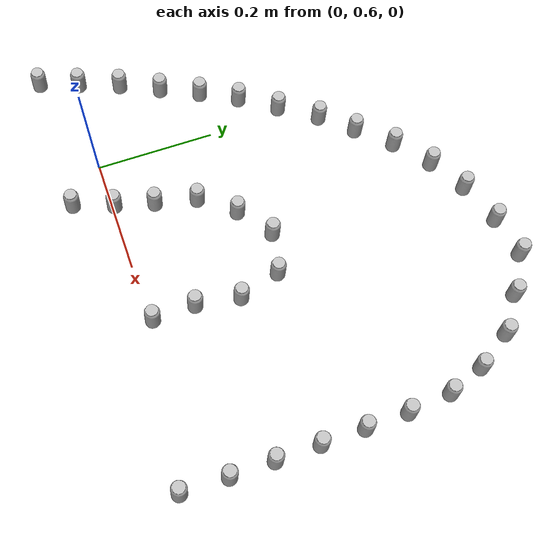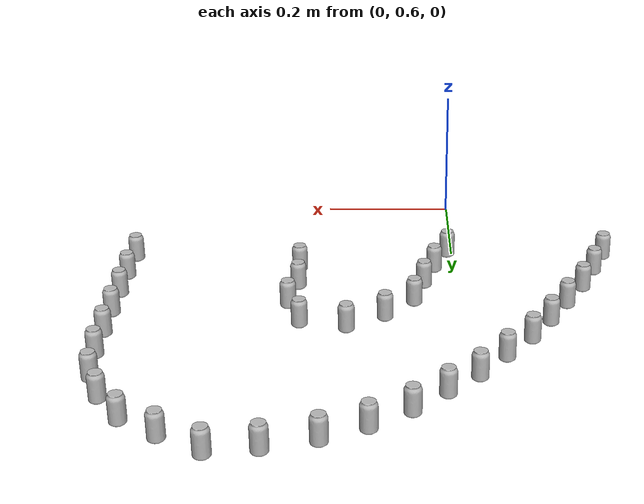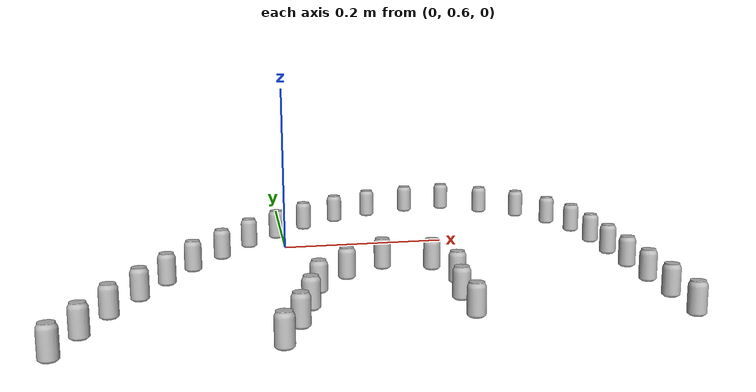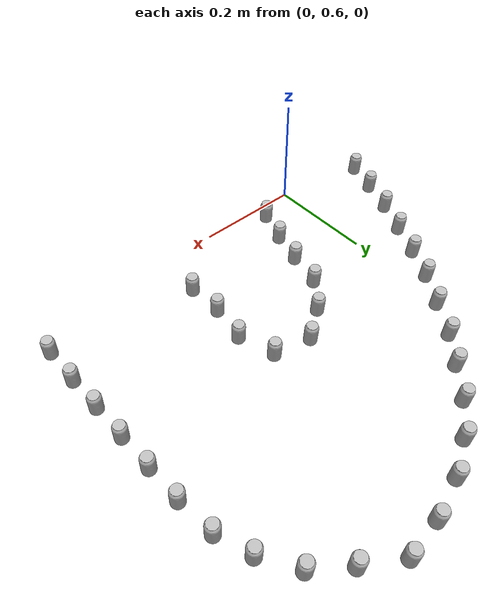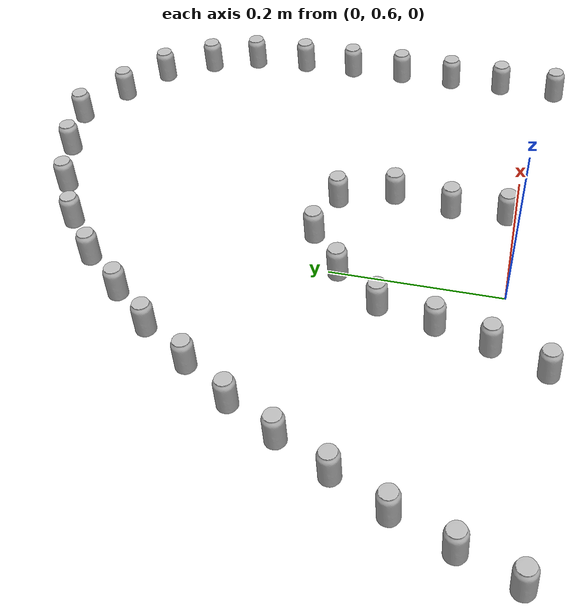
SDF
<sdf version="1.4">
 <world name="default">
  <model name="ground_plane">
   <static>1</static>
   <link name="link">
    <collision name="collision">
     <geometry><plane><normal>0 0 1</normal><size>100 100</size></plane></geometry>
     <surface><friction><ode><mu>100</mu><mu2>50</mu2></ode></friction></surface>
    </collision>
    <visual name="visual">
     <cast_shadows>0</cast_shadows>
     <geometry><plane><normal>0 0 1</normal><size>100 100</size></plane></geometry>
     <material>
      <script><uri>file://media/materials/scripts/gazebo.material</uri><name>Gazebo/Grey</name></script>
     </material>
    </visual>
    <velocity_decay><linear>0</linear><angular>0</angular></velocity_decay>
   </link>
  </model>
  <model name="coke_can_11">
   <static>1</static>
   <link name="link">
    <inertial>
     <mass>0.39</mass>
     <inertia><ixx>0.00058</ixx><ixy>0</ixy><ixz>0</ixz><iyy>0.00058</iyy><iyz>0</iyz><izz>0.00019</izz></inertia>
    </inertial>
    <collision name="collision">
     <pose>0 0 -0.183 0 -0 0</pose>
     <geometry>
      <mesh><uri>model://coke_can/meshes/coke_can.dae</uri><scale>0.398 0.398 0.398</scale></mesh>
     </geometry>
     <surface>
      <friction><ode><mu>1</mu><mu2>1</mu2></ode></friction>
      <contact><ode><kp>1e+07</kp><kd>1</kd><min_depth>0.001</min_depth><max_vel>0.1</max_vel></ode></contact>
     </surface>
    </collision>
    <visual name="visual">
     <pose>0 0 -0.183 0 -0 0</pose>
     <geometry>
      <mesh><uri>model://coke_can/meshes/coke_can.dae</uri><scale>0.398 0.398 0.398</scale></mesh>
     </geometry>
    </visual>
    <velocity_decay><linear>0</linear><angular>0</angular></velocity_decay>
   </link>
   <pose>0.551856 0.569792 -0.001657 -0.05647 0.004812 0.001626</pose>
   <static>0</static>
  </model>
  <model name="coke_can_12">
   <static>1</static>
   <link name="link">
    <inertial>
     <mass>0.39</mass>
     <inertia><ixx>0.00058</ixx><ixy>0</ixy><ixz>0</ixz><iyy>0.00058</iyy><iyz>0</iyz><izz>0.00019</izz></inertia>
    </inertial>
    <collision name="collision">
     <pose>0 0 -0.183 0 -0 0</pose>
     <geometry>
      <mesh><uri>model://coke_can/meshes/coke_can.dae</uri><scale>0.398 0.398 0.398</scale></mesh>
     </geometry>
     <surface>
      <friction><ode><mu>1</mu><mu2>1</mu2></ode></friction>
      <contact><ode><kp>1e+07</kp><kd>1</kd><min_depth>0.001</min_depth><max_vel>0.1</max_vel></ode></contact>
     </surface>
    </collision>
    <visual name="visual">
     <pose>0 0 -0.183 0 -0 0</pose>
     <geometry>
      <mesh><uri>model://coke_can/meshes/coke_can.dae</uri><scale>0.398 0.398 0.398</scale></mesh>
     </geometry>
    </visual>
    <velocity_decay><linear>0</linear><angular>0</angular></velocity_decay>
   </link>
   <pose>0.553953 0.651431 -0.001657 -0.05647 0.004812 0.001626</pose>
   <static>0</static>
  </model>
  <model name="coke_can_13">
   <static>1</static>
   <link name="link">
    <inertial>
     <mass>0.39</mass>
     <inertia><ixx>0.00058</ixx><ixy>0</ixy><ixz>0</ixz><iyy>0.00058</iyy><iyz>0</iyz><izz>0.00019</izz></inertia>
    </inertial>
    <collision name="collision">
     <pose>0 0 -0.183 0 -0 0</pose>
     <geometry>
      <mesh><uri>model://coke_can/meshes/coke_can.dae</uri><scale>0.398 0.398 0.398</scale></mesh>
     </geometry>
     <surface>
      <friction><ode><mu>1</mu><mu2>1</mu2></ode></friction>
      <contact><ode><kp>1e+07</kp><kd>1</kd><min_depth>0.001</min_depth><max_vel>0.1</max_vel></ode></contact>
     </surface>
    </collision>
    <visual name="visual">
     <pose>0 0 -0.183 0 -0 0</pose>
     <geometry>
      <mesh><uri>model://coke_can/meshes/coke_can.dae</uri><scale>0.398 0.398 0.398</scale></mesh>
     </geometry>
    </visual>
    <velocity_decay><linear>0</linear><angular>0</angular></velocity_decay>
   </link>
   <pose>0.55358 0.727718 -0.001657 -0.05647 0.004812 0.001626</pose>
   <static>0</static>
  </model>
  <model name="coke_can_14">
   <static>1</static>
   <link name="link">
    <inertial>
     <mass>0.39</mass>
     <inertia><ixx>0.00058</ixx><ixy>0</ixy><ixz>0</ixz><iyy>0.00058</iyy><iyz>0</iyz><izz>0.00019</izz></inertia>
    </inertial>
    <collision name="collision">
     <pose>0 0 -0.183 0 -0 0</pose>
     <geometry>
      <mesh><uri>model://coke_can/meshes/coke_can.dae</uri><scale>0.398 0.398 0.398</scale></mesh>
     </geometry>
     <surface>
      <friction><ode><mu>1</mu><mu2>1</mu2></ode></friction>
      <contact><ode><kp>1e+07</kp><kd>1</kd><min_depth>0.001</min_depth><max_vel>0.1</max_vel></ode></contact>
     </surface>
    </collision>
    <visual name="visual">
     <pose>0 0 -0.183 0 -0 0</pose>
     <geometry>
      <mesh><uri>model://coke_can/meshes/coke_can.dae</uri><scale>0.398 0.398 0.398</scale></mesh>
     </geometry>
    </visual>
    <velocity_decay><linear>0</linear><angular>0</angular></velocity_decay>
   </link>
   <pose>0.553579 0.804939 -0.001657 -0.05647 0.004812 0.001626</pose>
   <static>0</static>
  </model>
  <model name="coke_can_15">
   <static>1</static>
   <link name="link">
    <inertial>
     <mass>0.39</mass>
     <inertia><ixx>0.00058</ixx><ixy>0</ixy><ixz>0</ixz><iyy>0.00058</iyy><iyz>0</iyz><izz>0.00019</izz></inertia>
    </inertial>
    <collision name="collision">
     <pose>0 0 -0.183 0 -0 0</pose>
     <geometry>
      <mesh><uri>model://coke_can/meshes/coke_can.dae</uri><scale>0.398 0.398 0.398</scale></mesh>
     </geometry>
     <surface>
      <friction><ode><mu>1</mu><mu2>1</mu2></ode></friction>
      <contact><ode><kp>1e+07</kp><kd>1</kd><min_depth>0.001</min_depth><max_vel>0.1</max_vel></ode></contact>
     </surface>
    </collision>
    <visual name="visual">
     <pose>0 0 -0.183 0 -0 0</pose>
     <geometry>
      <mesh><uri>model://coke_can/meshes/coke_can.dae</uri><scale>0.398 0.398 0.398</scale></mesh>
     </geometry>
    </visual>
    <velocity_decay><linear>0</linear><angular>0</angular></velocity_decay>
   </link>
   <pose>0.552971 0.881645 -0.001657 -0.05647 0.004812 0.001626</pose>
   <static>0</static>
  </model>
  <model name="coke_can_16">
   <static>1</static>
   <link name="link">
    <inertial>
     <mass>0.39</mass>
     <inertia><ixx>0.00058</ixx><ixy>0</ixy><ixz>0</ixz><iyy>0.00058</iyy><iyz>0</iyz><izz>0.00019</izz></inertia>
    </inertial>
    <collision name="collision">
     <pose>0 0 -0.183 0 -0 0</pose>
     <geometry>
      <mesh><uri>model://coke_can/meshes/coke_can.dae</uri><scale>0.398 0.398 0.398</scale></mesh>
     </geometry>
     <surface>
      <friction><ode><mu>1</mu><mu2>1</mu2></ode></friction>
      <contact><ode><kp>1e+07</kp><kd>1</kd><min_depth>0.001</min_depth><max_vel>0.1</max_vel></ode></contact>
     </surface>
    </collision>
    <visual name="visual">
     <pose>0 0 -0.183 0 -0 0</pose>
     <geometry>
      <mesh><uri>model://coke_can/meshes/coke_can.dae</uri><scale>0.398 0.398 0.398</scale></mesh>
     </geometry>
    </visual>
    <velocity_decay><linear>0</linear><angular>0</angular></velocity_decay>
   </link>
   <pose>0.551859 0.957143 -0.001657 -0.05647 0.004812 0.001626</pose>
   <static>0</static>
  </model>
  <model name="coke_can_17">
   <static>1</static>
   <link name="link">
    <inertial>
     <mass>0.39</mass>
     <inertia><ixx>0.00058</ixx><ixy>0</ixy><ixz>0</ixz><iyy>0.00058</iyy><iyz>0</iyz><izz>0.00019</izz></inertia>
    </inertial>
    <collision name="collision">
     <pose>0 0 -0.183 0 -0 0</pose>
     <geometry>
      <mesh><uri>model://coke_can/meshes/coke_can.dae</uri><scale>0.398 0.398 0.398</scale></mesh>
     </geometry>
     <surface>
      <friction><ode><mu>1</mu><mu2>1</mu2></ode></friction>
      <contact><ode><kp>1e+07</kp><kd>1</kd><min_depth>0.001</min_depth><max_vel>0.1</max_vel></ode></contact>
     </surface>
    </collision>
    <visual name="visual">
     <pose>0 0 -0.183 0 -0 0</pose>
     <geometry>
      <mesh><uri>model://coke_can/meshes/coke_can.dae</uri><scale>0.398 0.398 0.398</scale></mesh>
     </geometry>
    </visual>
    <velocity_decay><linear>0</linear><angular>0</angular></velocity_decay>
   </link>
   <pose>0.544914 1.03438 -0.001657 -0.05647 0.004812 0.001626</pose>
   <static>0</static>
  </model>
  <model name="coke_can_18">
   <static>1</static>
   <link name="link">
    <inertial>
     <mass>0.39</mass>
     <inertia><ixx>0.00058</ixx><ixy>0</ixy><ixz>0</ixz><iyy>0.00058</iyy><iyz>0</iyz><izz>0.00019</izz></inertia>
    </inertial>
    <collision name="collision">
     <pose>0 0 -0.183 0 -0 0</pose>
     <geometry>
      <mesh><uri>model://coke_can/meshes/coke_can.dae</uri><scale>0.398 0.398 0.398</scale></mesh>
     </geometry>
     <surface>
      <friction><ode><mu>1</mu><mu2>1</mu2></ode></friction>
      <contact><ode><kp>1e+07</kp><kd>1</kd><min_depth>0.001</min_depth><max_vel>0.1</max_vel></ode></contact>
     </surface>
    </collision>
    <visual name="visual">
     <pose>0 0 -0.183 0 -0 0</pose>
     <geometry>
      <mesh><uri>model://coke_can/meshes/coke_can.dae</uri><scale>0.398 0.398 0.398</scale></mesh>
     </geometry>
    </visual>
    <velocity_decay><linear>0</linear><angular>0</angular></velocity_decay>
   </link>
   <pose>0.52107 1.09986 -0.001657 -0.05647 0.004812 0.001626</pose>
   <static>0</static>
  </model>
  <model name="coke_can_19">
   <static>1</static>
   <link name="link">
    <inertial>
     <mass>0.39</mass>
     <inertia><ixx>0.00058</ixx><ixy>0</ixy><ixz>0</ixz><iyy>0.00058</iyy><iyz>0</iyz><izz>0.00019</izz></inertia>
    </inertial>
    <collision name="collision">
     <pose>0 0 -0.183 0 -0 0</pose>
     <geometry>
      <mesh><uri>model://coke_can/meshes/coke_can.dae</uri><scale>0.398 0.398 0.398</scale></mesh>
     </geometry>
     <surface>
      <friction><ode><mu>1</mu><mu2>1</mu2></ode></friction>
      <contact><ode><kp>1e+07</kp><kd>1</kd><min_depth>0.001</min_depth><max_vel>0.1</max_vel></ode></contact>
     </surface>
    </collision>
    <visual name="visual">
     <pose>0 0 -0.183 0 -0 0</pose>
     <geometry>
      <mesh><uri>model://coke_can/meshes/coke_can.dae</uri><scale>0.398 0.398 0.398</scale></mesh>
     </geometry>
    </visual>
    <velocity_decay><linear>0</linear><angular>0</angular></velocity_decay>
   </link>
   <pose>0.480327 1.16398 -0.001657 -0.05647 0.004812 0.001626</pose>
   <static>0</static>
  </model>
  <model name="coke_can_20">
   <static>1</static>
   <link name="link">
    <inertial>
     <mass>0.39</mass>
     <inertia><ixx>0.00058</ixx><ixy>0</ixy><ixz>0</ixz><iyy>0.00058</iyy><iyz>0</iyz><izz>0.00019</izz></inertia>
    </inertial>
    <collision name="collision">
     <pose>0 0 -0.183 0 -0 0</pose>
     <geometry>
      <mesh><uri>model://coke_can/meshes/coke_can.dae</uri><scale>0.398 0.398 0.398</scale></mesh>
     </geometry>
     <surface>
      <friction><ode><mu>1</mu><mu2>1</mu2></ode></friction>
      <contact><ode><kp>1e+07</kp><kd>1</kd><min_depth>0.001</min_depth><max_vel>0.1</max_vel></ode></contact>
     </surface>
    </collision>
    <visual name="visual">
     <pose>0 0 -0.183 0 -0 0</pose>
     <geometry>
      <mesh><uri>model://coke_can/meshes/coke_can.dae</uri><scale>0.398 0.398 0.398</scale></mesh>
     </geometry>
    </visual>
    <velocity_decay><linear>0</linear><angular>0</angular></velocity_decay>
   </link>
   <pose>0.419583 1.20952 -0.001657 -0.05647 0.004812 0.001626</pose>
   <static>0</static>
  </model>
  <model name="coke_can_21">
   <static>1</static>
   <link name="link">
    <inertial>
     <mass>0.39</mass>
     <inertia><ixx>0.00058</ixx><ixy>0</ixy><ixz>0</ixz><iyy>0.00058</iyy><iyz>0</iyz><izz>0.00019</izz></inertia>
    </inertial>
    <collision name="collision">
     <pose>0 0 -0.183 0 -0 0</pose>
     <geometry>
      <mesh><uri>model://coke_can/meshes/coke_can.dae</uri><scale>0.398 0.398 0.398</scale></mesh>
     </geometry>
     <surface>
      <friction><ode><mu>1</mu><mu2>1</mu2></ode></friction>
      <contact><ode><kp>1e+07</kp><kd>1</kd><min_depth>0.001</min_depth><max_vel>0.1</max_vel></ode></contact>
     </surface>
    </collision>
    <visual name="visual">
     <pose>0 0 -0.183 0 -0 0</pose>
     <geometry>
      <mesh><uri>model://coke_can/meshes/coke_can.dae</uri><scale>0.398 0.398 0.398</scale></mesh>
     </geometry>
    </visual>
    <velocity_decay><linear>0</linear><angular>0</angular></velocity_decay>
   </link>
   <pose>0.352083 1.25266 -0.001657 -0.05647 0.004812 0.001626</pose>
   <static>0</static>
  </model>
  <model name="coke_can_22">
   <static>1</static>
   <link name="link">
    <inertial>
     <mass>0.39</mass>
     <inertia><ixx>0.00058</ixx><ixy>0</ixy><ixz>0</ixz><iyy>0.00058</iyy><iyz>0</iyz><izz>0.00019</izz></inertia>
    </inertial>
    <collision name="collision">
     <pose>0 0 -0.183 0 -0 0</pose>
     <geometry>
      <mesh><uri>model://coke_can/meshes/coke_can.dae</uri><scale>0.398 0.398 0.398</scale></mesh>
     </geometry>
     <surface>
      <friction><ode><mu>1</mu><mu2>1</mu2></ode></friction>
      <contact><ode><kp>1e+07</kp><kd>1</kd><min_depth>0.001</min_depth><max_vel>0.1</max_vel></ode></contact>
     </surface>
    </collision>
    <visual name="visual">
     <pose>0 0 -0.183 0 -0 0</pose>
     <geometry>
      <mesh><uri>model://coke_can/meshes/coke_can.dae</uri><scale>0.398 0.398 0.398</scale></mesh>
     </geometry>
    </visual>
    <velocity_decay><linear>0</linear><angular>0</angular></velocity_decay>
   </link>
   <pose>0.275952 1.24191 -0.001657 -0.05647 0.004812 0.001626</pose>
   <static>0</static>
  </model>
  <model name="coke_can_23">
   <static>1</static>
   <link name="link">
    <inertial>
     <mass>0.39</mass>
     <inertia><ixx>0.00058</ixx><ixy>0</ixy><ixz>0</ixz><iyy>0.00058</iyy><iyz>0</iyz><izz>0.00019</izz></inertia>
    </inertial>
    <collision name="collision">
     <pose>0 0 -0.183 0 -0 0</pose>
     <geometry>
      <mesh><uri>model://coke_can/meshes/coke_can.dae</uri><scale>0.398 0.398 0.398</scale></mesh>
     </geometry>
     <surface>
      <friction><ode><mu>1</mu><mu2>1</mu2></ode></friction>
      <contact><ode><kp>1e+07</kp><kd>1</kd><min_depth>0.001</min_depth><max_vel>0.1</max_vel></ode></contact>
     </surface>
    </collision>
    <visual name="visual">
     <pose>0 0 -0.183 0 -0 0</pose>
     <geometry>
      <mesh><uri>model://coke_can/meshes/coke_can.dae</uri><scale>0.398 0.398 0.398</scale></mesh>
     </geometry>
    </visual>
    <velocity_decay><linear>0</linear><angular>0</angular></velocity_decay>
   </link>
   <pose>0.197094 1.21748 -0.001657 -0.05647 0.004812 0.001626</pose>
   <static>0</static>
  </model>
  <model name="coke_can_24">
   <static>1</static>
   <link name="link">
    <inertial>
     <mass>0.39</mass>
     <inertia><ixx>0.00058</ixx><ixy>0</ixy><ixz>0</ixz><iyy>0.00058</iyy><iyz>0</iyz><izz>0.00019</izz></inertia>
    </inertial>
    <collision name="collision">
     <pose>0 0 -0.183 0 -0 0</pose>
     <geometry>
      <mesh><uri>model://coke_can/meshes/coke_can.dae</uri><scale>0.398 0.398 0.398</scale></mesh>
     </geometry>
     <surface>
      <friction><ode><mu>1</mu><mu2>1</mu2></ode></friction>
      <contact><ode><kp>1e+07</kp><kd>1</kd><min_depth>0.001</min_depth><max_vel>0.1</max_vel></ode></contact>
     </surface>
    </collision>
    <visual name="visual">
     <pose>0 0 -0.183 0 -0 0</pose>
     <geometry>
      <mesh><uri>model://coke_can/meshes/coke_can.dae</uri><scale>0.398 0.398 0.398</scale></mesh>
     </geometry>
    </visual>
    <velocity_decay><linear>0</linear><angular>0</angular></velocity_decay>
   </link>
   <pose>0.129825 1.18197 -0.001657 -0.05647 0.004812 0.001626</pose>
   <static>0</static>
  </model>
  <model name="coke_can_25">
   <static>1</static>
   <link name="link">
    <inertial>
     <mass>0.39</mass>
     <inertia><ixx>0.00058</ixx><ixy>0</ixy><ixz>0</ixz><iyy>0.00058</iyy><iyz>0</iyz><izz>0.00019</izz></inertia>
    </inertial>
    <collision name="collision">
     <pose>0 0 -0.183 0 -0 0</pose>
     <geometry>
      <mesh><uri>model://coke_can/meshes/coke_can.dae</uri><scale>0.398 0.398 0.398</scale></mesh>
     </geometry>
     <surface>
      <friction><ode><mu>1</mu><mu2>1</mu2></ode></friction>
      <contact><ode><kp>1e+07</kp><kd>1</kd><min_depth>0.001</min_depth><max_vel>0.1</max_vel></ode></contact>
     </surface>
    </collision>
    <visual name="visual">
     <pose>0 0 -0.183 0 -0 0</pose>
     <geometry>
      <mesh><uri>model://coke_can/meshes/coke_can.dae</uri><scale>0.398 0.398 0.398</scale></mesh>
     </geometry>
    </visual>
    <velocity_decay><linear>0</linear><angular>0</angular></velocity_decay>
   </link>
   <pose>0.068113 1.13449 -0.001657 -0.05647 0.004812 0.001626</pose>
   <static>0</static>
  </model>
  <model name="coke_can_26">
   <static>1</static>
   <link name="link">
    <inertial>
     <mass>0.39</mass>
     <inertia><ixx>0.00058</ixx><ixy>0</ixy><ixz>0</ixz><iyy>0.00058</iyy><iyz>0</iyz><izz>0.00019</izz></inertia>
    </inertial>
    <collision name="collision">
     <pose>0 0 -0.183 0 -0 0</pose>
     <geometry>
      <mesh><uri>model://coke_can/meshes/coke_can.dae</uri><scale>0.398 0.398 0.398</scale></mesh>
     </geometry>
     <surface>
      <friction><ode><mu>1</mu><mu2>1</mu2></ode></friction>
      <contact><ode><kp>1e+07</kp><kd>1</kd><min_depth>0.001</min_depth><max_vel>0.1</max_vel></ode></contact>
     </surface>
    </collision>
    <visual name="visual">
     <pose>0 0 -0.183 0 -0 0</pose>
     <geometry>
      <mesh><uri>model://coke_can/meshes/coke_can.dae</uri><scale>0.398 0.398 0.398</scale></mesh>
     </geometry>
    </visual>
    <velocity_decay><linear>0</linear><angular>0</angular></velocity_decay>
   </link>
   <pose>0.01566 1.07888 -0.001657 -0.05647 0.004812 0.001626</pose>
   <static>0</static>
  </model>
  <model name="coke_can_27">
   <static>1</static>
   <link name="link">
    <inertial>
     <mass>0.39</mass>
     <inertia><ixx>0.00058</ixx><ixy>0</ixy><ixz>0</ixz><iyy>0.00058</iyy><iyz>0</iyz><izz>0.00019</izz></inertia>
    </inertial>
    <collision name="collision">
     <pose>0 0 -0.183 0 -0 0</pose>
     <geometry>
      <mesh><uri>model://coke_can/meshes/coke_can.dae</uri><scale>0.398 0.398 0.398</scale></mesh>
     </geometry>
     <surface>
      <friction><ode><mu>1</mu><mu2>1</mu2></ode></friction>
      <contact><ode><kp>1e+07</kp><kd>1</kd><min_depth>0.001</min_depth><max_vel>0.1</max_vel></ode></contact>
     </surface>
    </collision>
    <visual name="visual">
     <pose>0 0 -0.183 0 -0 0</pose>
     <geometry>
      <mesh><uri>model://coke_can/meshes/coke_can.dae</uri><scale>0.398 0.398 0.398</scale></mesh>
     </geometry>
    </visual>
    <velocity_decay><linear>0</linear><angular>0</angular></velocity_decay>
   </link>
   <pose>-0.033824 1.02561 -0.001657 -0.05647 0.004812 0.001626</pose>
   <static>0</static>
  </model>
  <model name="coke_can_28">
   <static>1</static>
   <link name="link">
    <inertial>
     <mass>0.39</mass>
     <inertia><ixx>0.00058</ixx><ixy>0</ixy><ixz>0</ixz><iyy>0.00058</iyy><iyz>0</iyz><izz>0.00019</izz></inertia>
    </inertial>
    <collision name="collision">
     <pose>0 0 -0.183 0 -0 0</pose>
     <geometry>
      <mesh><uri>model://coke_can/meshes/coke_can.dae</uri><scale>0.398 0.398 0.398</scale></mesh>
     </geometry>
     <surface>
      <friction><ode><mu>1</mu><mu2>1</mu2></ode></friction>
      <contact><ode><kp>1e+07</kp><kd>1</kd><min_depth>0.001</min_depth><max_vel>0.1</max_vel></ode></contact>
     </surface>
    </collision>
    <visual name="visual">
     <pose>0 0 -0.183 0 -0 0</pose>
     <geometry>
      <mesh><uri>model://coke_can/meshes/coke_can.dae</uri><scale>0.398 0.398 0.398</scale></mesh>
     </geometry>
    </visual>
    <velocity_decay><linear>0</linear><angular>0</angular></velocity_decay>
   </link>
   <pose>-0.079271 0.961086 -0.001657 -0.05647 0.004812 0.001626</pose>
   <static>0</static>
  </model>
  <model name="coke_can_29">
   <static>1</static>
   <link name="link">
    <inertial>
     <mass>0.39</mass>
     <inertia><ixx>0.00058</ixx><ixy>0</ixy><ixz>0</ixz><iyy>0.00058</iyy><iyz>0</iyz><izz>0.00019</izz></inertia>
    </inertial>
    <collision name="collision">
     <pose>0 0 -0.183 0 -0 0</pose>
     <geometry>
      <mesh><uri>model://coke_can/meshes/coke_can.dae</uri><scale>0.398 0.398 0.398</scale></mesh>
     </geometry>
     <surface>
      <friction><ode><mu>1</mu><mu2>1</mu2></ode></friction>
      <contact><ode><kp>1e+07</kp><kd>1</kd><min_depth>0.001</min_depth><max_vel>0.1</max_vel></ode></contact>
     </surface>
    </collision>
    <visual name="visual">
     <pose>0 0 -0.183 0 -0 0</pose>
     <geometry>
      <mesh><uri>model://coke_can/meshes/coke_can.dae</uri><scale>0.398 0.398 0.398</scale></mesh>
     </geometry>
    </visual>
    <velocity_decay><linear>0</linear><angular>0</angular></velocity_decay>
   </link>
   <pose>-0.124004 0.898088 -0.001657 -0.05647 0.004812 0.001626</pose>
   <static>0</static>
  </model>
  <model name="coke_can_30">
   <static>1</static>
   <link name="link">
    <inertial>
     <mass>0.39</mass>
     <inertia><ixx>0.00058</ixx><ixy>0</ixy><ixz>0</ixz><iyy>0.00058</iyy><iyz>0</iyz><izz>0.00019</izz></inertia>
    </inertial>
    <collision name="collision">
     <pose>0 0 -0.183 0 -0 0</pose>
     <geometry>
      <mesh><uri>model://coke_can/meshes/coke_can.dae</uri><scale>0.398 0.398 0.398</scale></mesh>
     </geometry>
     <surface>
      <friction><ode><mu>1</mu><mu2>1</mu2></ode></friction>
      <contact><ode><kp>1e+07</kp><kd>1</kd><min_depth>0.001</min_depth><max_vel>0.1</max_vel></ode></contact>
     </surface>
    </collision>
    <visual name="visual">
     <pose>0 0 -0.183 0 -0 0</pose>
     <geometry>
      <mesh><uri>model://coke_can/meshes/coke_can.dae</uri><scale>0.398 0.398 0.398</scale></mesh>
     </geometry>
    </visual>
    <velocity_decay><linear>0</linear><angular>0</angular></velocity_decay>
   </link>
   <pose>-0.160362 0.833004 -0.001657 -0.05647 0.004812 0.001626</pose>
   <static>0</static>
  </model>
  <model name="coke_can_31">
   <static>1</static>
   <link name="link">
    <inertial>
     <mass>0.39</mass>
     <inertia><ixx>0.00058</ixx><ixy>0</ixy><ixz>0</ixz><iyy>0.00058</iyy><iyz>0</iyz><izz>0.00019</izz></inertia>
    </inertial>
    <collision name="collision">
     <pose>0 0 -0.183 0 -0 0</pose>
     <geometry>
      <mesh><uri>model://coke_can/meshes/coke_can.dae</uri><scale>0.398 0.398 0.398</scale></mesh>
     </geometry>
     <surface>
      <friction><ode><mu>1</mu><mu2>1</mu2></ode></friction>
      <contact><ode><kp>1e+07</kp><kd>1</kd><min_depth>0.001</min_depth><max_vel>0.1</max_vel></ode></contact>
     </surface>
    </collision>
    <visual name="visual">
     <pose>0 0 -0.183 0 -0 0</pose>
     <geometry>
      <mesh><uri>model://coke_can/meshes/coke_can.dae</uri><scale>0.398 0.398 0.398</scale></mesh>
     </geometry>
    </visual>
    <velocity_decay><linear>0</linear><angular>0</angular></velocity_decay>
   </link>
   <pose>-0.194389 0.764948 -0.001657 -0.05647 0.004812 0.001626</pose>
   <static>0</static>
  </model>
  <model name="coke_can_32">
   <static>1</static>
   <link name="link">
    <inertial>
     <mass>0.39</mass>
     <inertia><ixx>0.00058</ixx><ixy>0</ixy><ixz>0</ixz><iyy>0.00058</iyy><iyz>0</iyz><izz>0.00019</izz></inertia>
    </inertial>
    <collision name="collision">
     <pose>0 0 -0.183 0 -0 0</pose>
     <geometry>
      <mesh><uri>model://coke_can/meshes/coke_can.dae</uri><scale>0.398 0.398 0.398</scale></mesh>
     </geometry>
     <surface>
      <friction><ode><mu>1</mu><mu2>1</mu2></ode></friction>
      <contact><ode><kp>1e+07</kp><kd>1</kd><min_depth>0.001</min_depth><max_vel>0.1</max_vel></ode></contact>
     </surface>
    </collision>
    <visual name="visual">
     <pose>0 0 -0.183 0 -0 0</pose>
     <geometry>
      <mesh><uri>model://coke_can/meshes/coke_can.dae</uri><scale>0.398 0.398 0.398</scale></mesh>
     </geometry>
    </visual>
    <velocity_decay><linear>0</linear><angular>0</angular></velocity_decay>
   </link>
   <pose>-0.229138 0.695363 -0.001657 -0.05647 0.004812 0.001626</pose>
   <static>0</static>
  </model>
  <model name="coke_can_33">
   <static>1</static>
   <link name="link">
    <inertial>
     <mass>0.39</mass>
     <inertia><ixx>0.00058</ixx><ixy>0</ixy><ixz>0</ixz><iyy>0.00058</iyy><iyz>0</iyz><izz>0.00019</izz></inertia>
    </inertial>
    <collision name="collision">
     <pose>0 0 -0.183 0 -0 0</pose>
     <geometry>
      <mesh><uri>model://coke_can/meshes/coke_can.dae</uri><scale>0.398 0.398 0.398</scale></mesh>
     </geometry>
     <surface>
      <friction><ode><mu>1</mu><mu2>1</mu2></ode></friction>
      <contact><ode><kp>1e+07</kp><kd>1</kd><min_depth>0.001</min_depth><max_vel>0.1</max_vel></ode></contact>
     </surface>
    </collision>
    <visual name="visual">
     <pose>0 0 -0.183 0 -0 0</pose>
     <geometry>
      <mesh><uri>model://coke_can/meshes/coke_can.dae</uri><scale>0.398 0.398 0.398</scale></mesh>
     </geometry>
    </visual>
    <velocity_decay><linear>0</linear><angular>0</angular></velocity_decay>
   </link>
   <pose>-0.25777 0.622889 -0.001657 -0.05647 0.004812 0.001626</pose>
   <static>0</static>
  </model>
  <model name="coke_can_34">
   <static>1</static>
   <link name="link">
    <inertial>
     <mass>0.39</mass>
     <inertia><ixx>0.00058</ixx><ixy>0</ixy><ixz>0</ixz><iyy>0.00058</iyy><iyz>0</iyz><izz>0.00019</izz></inertia>
    </inertial>
    <collision name="collision">
     <pose>0 0 -0.183 0 -0 0</pose>
     <geometry>
      <mesh><uri>model://coke_can/meshes/coke_can.dae</uri><scale>0.398 0.398 0.398</scale></mesh>
     </geometry>
     <surface>
      <friction><ode><mu>1</mu><mu2>1</mu2></ode></friction>
      <contact><ode><kp>1e+07</kp><kd>1</kd><min_depth>0.001</min_depth><max_vel>0.1</max_vel></ode></contact>
     </surface>
    </collision>
    <visual name="visual">
     <pose>0 0 -0.183 0 -0 0</pose>
     <geometry>
      <mesh><uri>model://coke_can/meshes/coke_can.dae</uri><scale>0.398 0.398 0.398</scale></mesh>
     </geometry>
    </visual>
    <velocity_decay><linear>0</linear><angular>0</angular></velocity_decay>
   </link>
   <pose>-0.28343 0.552749 -0.001657 -0.05647 0.004812 0.001626</pose>
   <static>0</static>
  </model>
  <model name="coke_can_53">
   <static>1</static>
   <link name="link">
    <inertial>
     <mass>0.39</mass>
     <inertia><ixx>0.00058</ixx><ixy>0</ixy><ixz>0</ixz><iyy>0.00058</iyy><iyz>0</iyz><izz>0.00019</izz></inertia>
    </inertial>
    <collision name="collision">
     <pose>0 0 -0.183 0 -0 0</pose>
     <geometry>
      <mesh><uri>model://coke_can/meshes/coke_can.dae</uri><scale>0.398 0.398 0.398</scale></mesh>
     </geometry>
     <surface>
      <friction><ode><mu>1</mu><mu2>1</mu2></ode></friction>
      <contact><ode><kp>1e+07</kp><kd>1</kd><min_depth>0.001</min_depth><max_vel>0.1</max_vel></ode></contact>
     </surface>
    </collision>
    <visual name="visual">
     <pose>0 0 -0.183 0 -0 0</pose>
     <geometry>
      <mesh><uri>model://coke_can/meshes/coke_can.dae</uri><scale>0.398 0.398 0.398</scale></mesh>
     </geometry>
    </visual>
    <velocity_decay><linear>0</linear><angular>0</angular></velocity_decay>
   </link>
   <pose>0.256653 0.615425 -0.001657 -0.05647 0.004812 0.001626</pose>
   <static>0</static>
  </model>
  <model name="coke_can_54">
   <static>1</static>
   <link name="link">
    <inertial>
     <mass>0.39</mass>
     <inertia><ixx>0.00058</ixx><ixy>0</ixy><ixz>0</ixz><iyy>0.00058</iyy><iyz>0</iyz><izz>0.00019</izz></inertia>
    </inertial>
    <collision name="collision">
     <pose>0 0 -0.183 0 -0 0</pose>
     <geometry>
      <mesh><uri>model://coke_can/meshes/coke_can.dae</uri><scale>0.398 0.398 0.398</scale></mesh>
     </geometry>
     <surface>
      <friction><ode><mu>1</mu><mu2>1</mu2></ode></friction>
      <contact><ode><kp>1e+07</kp><kd>1</kd><min_depth>0.001</min_depth><max_vel>0.1</max_vel></ode></contact>
     </surface>
    </collision>
    <visual name="visual">
     <pose>0 0 -0.183 0 -0 0</pose>
     <geometry>
      <mesh><uri>model://coke_can/meshes/coke_can.dae</uri><scale>0.398 0.398 0.398</scale></mesh>
     </geometry>
    </visual>
    <velocity_decay><linear>0</linear><angular>0</angular></velocity_decay>
   </link>
   <pose>0.254968 0.690989 -0.001657 -0.05647 0.004812 0.001626</pose>
   <static>0</static>
  </model>
  <model name="coke_can_55">
   <static>1</static>
   <link name="link">
    <inertial>
     <mass>0.39</mass>
     <inertia><ixx>0.00058</ixx><ixy>0</ixy><ixz>0</ixz><iyy>0.00058</iyy><iyz>0</iyz><izz>0.00019</izz></inertia>
    </inertial>
    <collision name="collision">
     <pose>0 0 -0.183 0 -0 0</pose>
     <geometry>
      <mesh><uri>model://coke_can/meshes/coke_can.dae</uri><scale>0.398 0.398 0.398</scale></mesh>
     </geometry>
     <surface>
      <friction><ode><mu>1</mu><mu2>1</mu2></ode></friction>
      <contact><ode><kp>1e+07</kp><kd>1</kd><min_depth>0.001</min_depth><max_vel>0.1</max_vel></ode></contact>
     </surface>
    </collision>
    <visual name="visual">
     <pose>0 0 -0.183 0 -0 0</pose>
     <geometry>
      <mesh><uri>model://coke_can/meshes/coke_can.dae</uri><scale>0.398 0.398 0.398</scale></mesh>
     </geometry>
    </visual>
    <velocity_decay><linear>0</linear><angular>0</angular></velocity_decay>
   </link>
   <pose>0.267821 0.769185 -0.001657 -0.05647 0.004812 0.001626</pose>
   <static>0</static>
  </model>
  <model name="coke_can_56">
   <static>1</static>
   <link name="link">
    <inertial>
     <mass>0.39</mass>
     <inertia><ixx>0.00058</ixx><ixy>0</ixy><ixz>0</ixz><iyy>0.00058</iyy><iyz>0</iyz><izz>0.00019</izz></inertia>
    </inertial>
    <collision name="collision">
     <pose>0 0 -0.183 0 -0 0</pose>
     <geometry>
      <mesh><uri>model://coke_can/meshes/coke_can.dae</uri><scale>0.398 0.398 0.398</scale></mesh>
     </geometry>
     <surface>
      <friction><ode><mu>1</mu><mu2>1</mu2></ode></friction>
      <contact><ode><kp>1e+07</kp><kd>1</kd><min_depth>0.001</min_depth><max_vel>0.1</max_vel></ode></contact>
     </surface>
    </collision>
    <visual name="visual">
     <pose>0 0 -0.183 0 -0 0</pose>
     <geometry>
      <mesh><uri>model://coke_can/meshes/coke_can.dae</uri><scale>0.398 0.398 0.398</scale></mesh>
     </geometry>
    </visual>
    <velocity_decay><linear>0</linear><angular>0</angular></velocity_decay>
   </link>
   <pose>0.244991 0.84353 -0.001657 -0.05647 0.004812 0.001626</pose>
   <static>0</static>
  </model>
  <model name="coke_can_57">
   <static>1</static>
   <link name="link">
    <inertial>
     <mass>0.39</mass>
     <inertia><ixx>0.00058</ixx><ixy>0</ixy><ixz>0</ixz><iyy>0.00058</iyy><iyz>0</iyz><izz>0.00019</izz></inertia>
    </inertial>
    <collision name="collision">
     <pose>0 0 -0.183 0 -0 0</pose>
     <geometry>
      <mesh><uri>model://coke_can/meshes/coke_can.dae</uri><scale>0.398 0.398 0.398</scale></mesh>
     </geometry>
     <surface>
      <friction><ode><mu>1</mu><mu2>1</mu2></ode></friction>
      <contact><ode><kp>1e+07</kp><kd>1</kd><min_depth>0.001</min_depth><max_vel>0.1</max_vel></ode></contact>
     </surface>
    </collision>
    <visual name="visual">
     <pose>0 0 -0.183 0 -0 0</pose>
     <geometry>
      <mesh><uri>model://coke_can/meshes/coke_can.dae</uri><scale>0.398 0.398 0.398</scale></mesh>
     </geometry>
    </visual>
    <velocity_decay><linear>0</linear><angular>0</angular></velocity_decay>
   </link>
   <pose>0.16899 0.860751 -0.001657 -0.05647 0.004812 0.001626</pose>
   <static>0</static>
  </model>
  <model name="coke_can_58">
   <static>1</static>
   <link name="link">
    <inertial>
     <mass>0.39</mass>
     <inertia><ixx>0.00058</ixx><ixy>0</ixy><ixz>0</ixz><iyy>0.00058</iyy><iyz>0</iyz><izz>0.00019</izz></inertia>
    </inertial>
    <collision name="collision">
     <pose>0 0 -0.183 0 -0 0</pose>
     <geometry>
      <mesh><uri>model://coke_can/meshes/coke_can.dae</uri><scale>0.398 0.398 0.398</scale></mesh>
     </geometry>
     <surface>
      <friction><ode><mu>1</mu><mu2>1</mu2></ode></friction>
      <contact><ode><kp>1e+07</kp><kd>1</kd><min_depth>0.001</min_depth><max_vel>0.1</max_vel></ode></contact>
     </surface>
    </collision>
    <visual name="visual">
     <pose>0 0 -0.183 0 -0 0</pose>
     <geometry>
      <mesh><uri>model://coke_can/meshes/coke_can.dae</uri><scale>0.398 0.398 0.398</scale></mesh>
     </geometry>
    </visual>
    <velocity_decay><linear>0</linear><angular>0</angular></velocity_decay>
   </link>
   <pose>0.107201 0.81704 -0.001657 -0.05647 0.004812 0.001626</pose>
   <static>0</static>
  </model>
  <model name="coke_can_59">
   <static>1</static>
   <link name="link">
    <inertial>
     <mass>0.39</mass>
     <inertia><ixx>0.00058</ixx><ixy>0</ixy><ixz>0</ixz><iyy>0.00058</iyy><iyz>0</iyz><izz>0.00019</izz></inertia>
    </inertial>
    <collision name="collision">
     <pose>0 0 -0.183 0 -0 0</pose>
     <geometry>
      <mesh><uri>model://coke_can/meshes/coke_can.dae</uri><scale>0.398 0.398 0.398</scale></mesh>
     </geometry>
     <surface>
      <friction><ode><mu>1</mu><mu2>1</mu2></ode></friction>
      <contact><ode><kp>1e+07</kp><kd>1</kd><min_depth>0.001</min_depth><max_vel>0.1</max_vel></ode></contact>
     </surface>
    </collision>
    <visual name="visual">
     <pose>0 0 -0.183 0 -0 0</pose>
     <geometry>
      <mesh><uri>model://coke_can/meshes/coke_can.dae</uri><scale>0.398 0.398 0.398</scale></mesh>
     </geometry>
    </visual>
    <velocity_decay><linear>0</linear><angular>0</angular></velocity_decay>
   </link>
   <pose>0.058614 0.757741 -0.001657 -0.05647 0.004812 0.001626</pose>
   <static>0</static>
  </model>
  <model name="coke_can_60">
   <static>1</static>
   <link name="link">
    <inertial>
     <mass>0.39</mass>
     <inertia><ixx>0.00058</ixx><ixy>0</ixy><ixz>0</ixz><iyy>0.00058</iyy><iyz>0</iyz><izz>0.00019</izz></inertia>
    </inertial>
    <collision name="collision">
     <pose>0 0 -0.183 0 -0 0</pose>
     <geometry>
      <mesh><uri>model://coke_can/meshes/coke_can.dae</uri><scale>0.398 0.398 0.398</scale></mesh>
     </geometry>
     <surface>
      <friction><ode><mu>1</mu><mu2>1</mu2></ode></friction>
      <contact><ode><kp>1e+07</kp><kd>1</kd><min_depth>0.001</min_depth><max_vel>0.1</max_vel></ode></contact>
     </surface>
    </collision>
    <visual name="visual">
     <pose>0 0 -0.183 0 -0 0</pose>
     <geometry>
      <mesh><uri>model://coke_can/meshes/coke_can.dae</uri><scale>0.398 0.398 0.398</scale></mesh>
     </geometry>
    </visual>
    <velocity_decay><linear>0</linear><angular>0</angular></velocity_decay>
   </link>
   <pose>0.040601 0.683998 -0.001657 -0.05647 0.004812 0.001626</pose>
   <static>0</static>
  </model>
  <model name="coke_can_61">
   <static>1</static>
   <link name="link">
    <inertial>
     <mass>0.39</mass>
     <inertia><ixx>0.00058</ixx><ixy>0</ixy><ixz>0</ixz><iyy>0.00058</iyy><iyz>0</iyz><izz>0.00019</izz></inertia>
    </inertial>
    <collision name="collision">
     <pose>0 0 -0.183 0 -0 0</pose>
     <geometry>
      <mesh><uri>model://coke_can/meshes/coke_can.dae</uri><scale>0.398 0.398 0.398</scale></mesh>
     </geometry>
     <surface>
      <friction><ode><mu>1</mu><mu2>1</mu2></ode></friction>
      <contact><ode><kp>1e+07</kp><kd>1</kd><min_depth>0.001</min_depth><max_vel>0.1</max_vel></ode></contact>
     </surface>
    </collision>
    <visual name="visual">
     <pose>0 0 -0.183 0 -0 0</pose>
     <geometry>
      <mesh><uri>model://coke_can/meshes/coke_can.dae</uri><scale>0.398 0.398 0.398</scale></mesh>
     </geometry>
    </visual>
    <velocity_decay><linear>0</linear><angular>0</angular></velocity_decay>
   </link>
   <pose>0.020971 0.614757 -0.001657 -0.05647 0.004812 0.001626</pose>
   <static>0</static>
  </model>
  <model name="coke_can_62">
   <static>1</static>
   <link name="link">
    <inertial>
     <mass>0.39</mass>
     <inertia><ixx>0.00058</ixx><ixy>0</ixy><ixz>0</ixz><iyy>0.00058</iyy><iyz>0</iyz><izz>0.00019</izz></inertia>
    </inertial>
    <collision name="collision">
     <pose>0 0 -0.183 0 -0 0</pose>
     <geometry>
      <mesh><uri>model://coke_can/meshes/coke_can.dae</uri><scale>0.398 0.398 0.398</scale></mesh>
     </geometry>
     <surface>
      <friction><ode><mu>1</mu><mu2>1</mu2></ode></friction>
      <contact><ode><kp>1e+07</kp><kd>1</kd><min_depth>0.001</min_depth><max_vel>0.1</max_vel></ode></contact>
     </surface>
    </collision>
    <visual name="visual">
     <pose>0 0 -0.183 0 -0 0</pose>
     <geometry>
      <mesh><uri>model://coke_can/meshes/coke_can.dae</uri><scale>0.398 0.398 0.398</scale></mesh>
     </geometry>
    </visual>
    <velocity_decay><linear>0</linear><angular>0</angular></velocity_decay>
   </link>
   <pose>-0.004687 0.544624 -0.001657 -0.05647 0.004812 0.001626</pose>
   <static>0</static>
  </model>
 </world>
</sdf>
